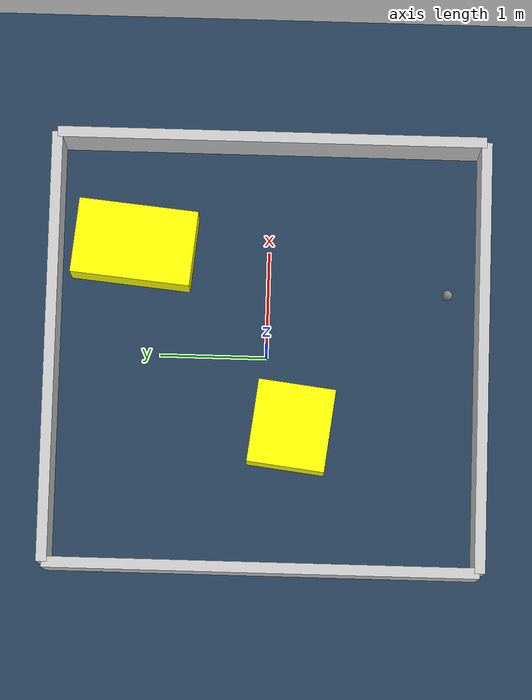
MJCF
<?xml version="1.0" ?>
<mujoco model="generated_environment">
  <option timestep="0.01" integrator="RK4" cone="elliptic"/>
  <default>
    <geom density="1"/>
  </default>
  <asset>
    <texture builtin="gradient" height="3072" rgb1="0.3 0.5 0.7" rgb2="0 0 0" type="skybox" width="512"/>
    <texture builtin="checker" height="300" mark="edge" markrgb="0.8 0.8 0.8" name="groundplane" rgb1="0.2 0.3 0.4" rgb2="0.1 0.2 0.3" type="2d" width="300"/>
    <material name="groundplane" reflectance="0.2" texrepeat="5 5" texture="groundplane" texuniform="true"/>
    <material name="robot" rgba="0.0 1.0 0.0 1"/>
  </asset>
  <worldbody>
    <light dir="0 0 -1" directional="true" pos="0 0 1.5"/>
    <geom condim="4" friction="1.0 0.005 0.001" material="groundplane" name="floor" size="0 0 0.05" type="plane"/>
    <body name="walls">
      <geom name="wall_1" condim="4" pos="-2.0 0.0 0.3" rgba="0.800000011920929 0.800000011920929 0.800000011920929 1.0" size="0.05 2.0 0.3" type="box"/>
      <geom name="wall_2" condim="4" pos="2.0 0.0 0.3" rgba="0.800000011920929 0.800000011920929 0.800000011920929 1.0" size="0.05 2.0 0.3" type="box"/>
      <geom name="wall_3" condim="4" pos="0.0 -2.0 0.3" rgba="0.800000011920929 0.800000011920929 0.800000011920929 1.0" size="2.0 0.05 0.3" type="box"/>
      <geom name="wall_4" condim="4" pos="0.0 2.0 0.3" rgba="0.800000011920929 0.800000011920929 0.800000011920929 1.0" size="2.0 0.05 0.3" type="box"/>
    </body>
    <body name="robot">
      <joint name="joint_x" type="slide" pos="0 0 0" axis="1 0 0"/>
      <joint name="joint_y" type="slide" pos="0 0 0" axis="0 1 0"/>
      <geom name="robot" type="sphere" pos="0.6152621433116354 -1.680210908644643 0.2" size="0.05" mass="5." friction="1.0 0.005 0.0001" condim="4"/>
      <site name="sensor_ball"/>
    </body>
    <body name="obstacle_1_movable">
      <geom name="obstacle_1_movable" condim="4" pos="1.0127885945558757 1.2637352028930695 0.2" euler="0 0 264.41848175960206" friction="1.0 0.005 0.001" rgba="1 1 0 1" size="0.5616571310015752 0.35295580693913065 0.2" type="box" mass="0.1"/>
      <joint type="free"/>
    </body>
    <body name="obstacle_2_movable">
      <geom name="obstacle_2_movable" condim="4" pos="-0.670310224643666 -0.24914325805690174 0.2" euler="0 0 352.99925191382806" friction="1.0 0.005 0.001" rgba="1 1 0 1" size="0.3884983648411273 0.36275318867635303 0.2" type="box" mass="0.1"/>
      <joint type="free"/>
    </body>
  </worldbody>
  <actuator>
    <motor name="actuator_x" joint="joint_x" gear="1" ctrlrange="-1 1"/>
    <motor name="actuator_y" joint="joint_y" gear="1" ctrlrange="-1 1"/>
  </actuator>
</mujoco>
